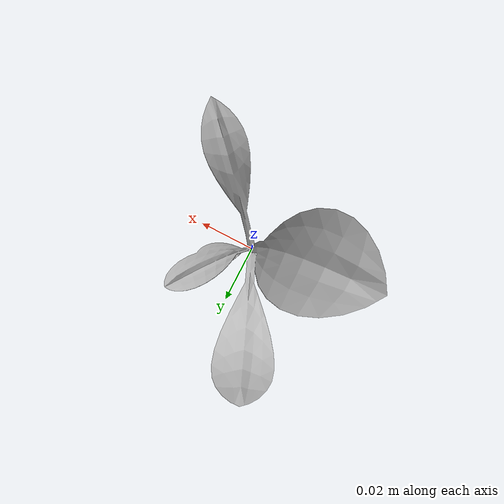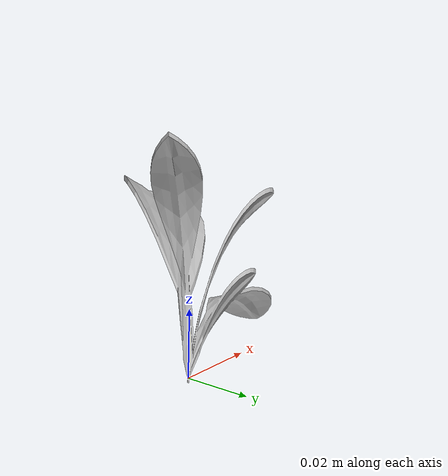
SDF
<sdf version="1.6">
  <model name="sugar_beet_26">
    <static>true</static>
    <link name="body">
      <visual name="visual">
        <geometry>
          <mesh>
            <uri>file:///sugar_beet_26/media/sugar_beet.dae</uri>
          </mesh>
        </geometry>
      </visual>
    </link>
  </model>
</sdf>
